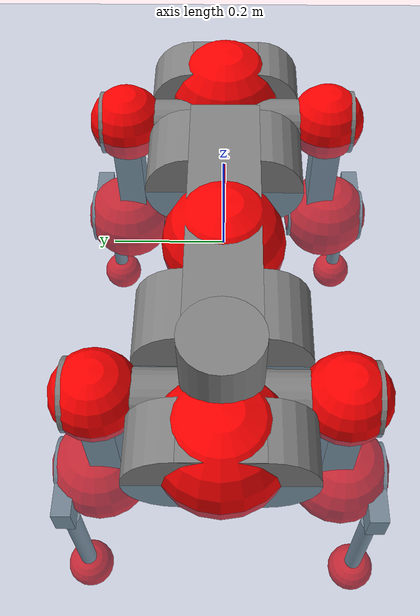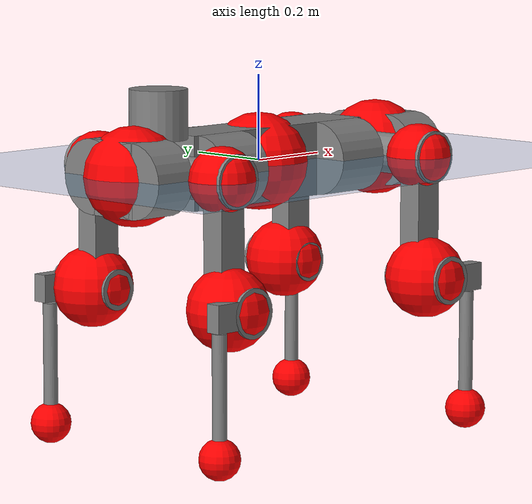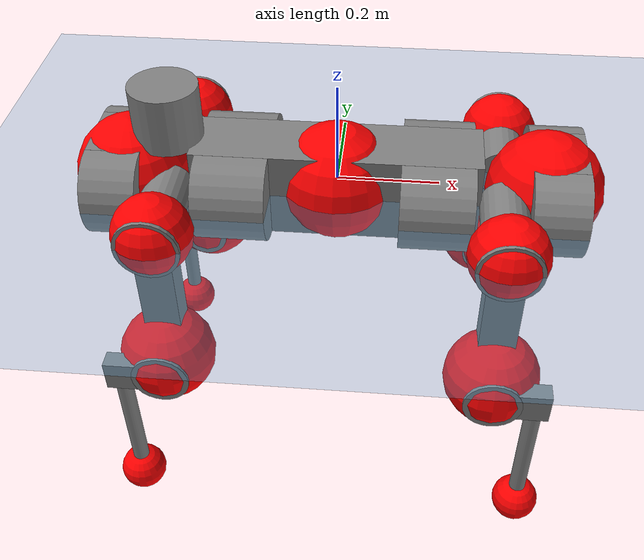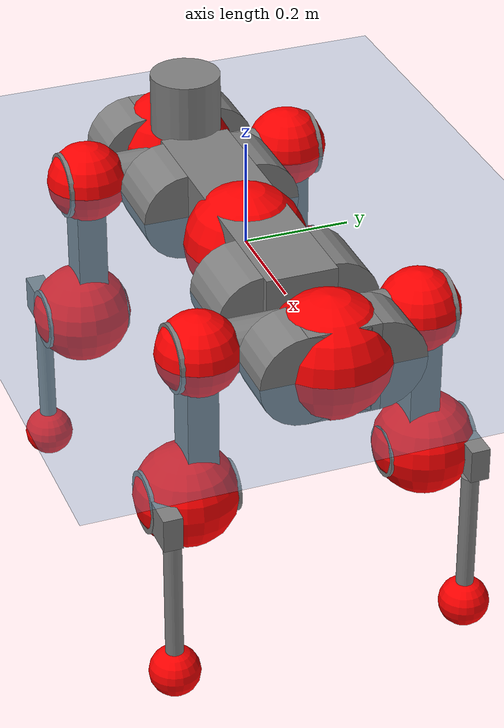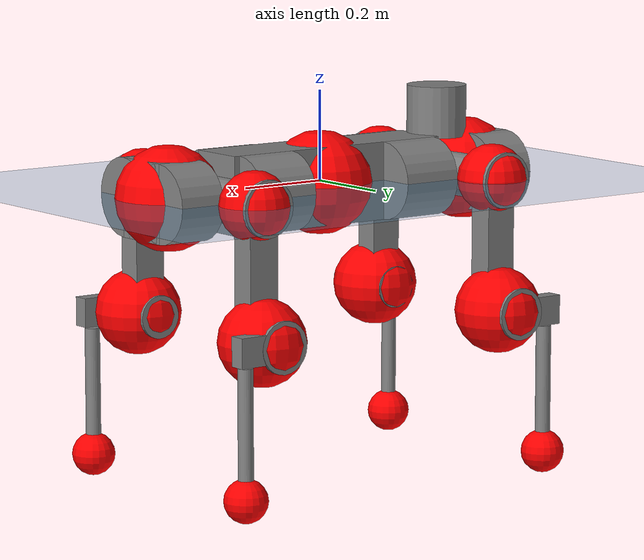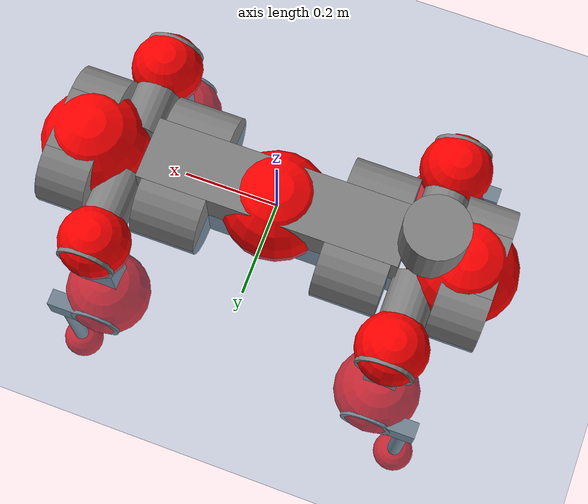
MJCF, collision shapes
<mujoco model="anymal_c">
  <compiler angle="radian" assetdir="assets" balanceinertia="true" inertiafromgeom="false"/>

  <option timestep="0.005" density="1.2" viscosity="2e-05"/>

  <size nkey="1"/>

  <visual>
    <quality shadowsize="8192"/>
    <map shadowclip="0.5"/>
  </visual>

  <default>
    <default class="/">
      <material specular="0" shininess="0.25"/>
      <geom contype="0" conaffinity="0" group="1" solref="-1000 -80"/>
      <site size="0.01 0.005 0.005" group="5"/>
      <general forcelimited="true" forcerange="-80 80" biastype="affine" gainprm="80" biasprm="0 -80 -2"/>
      <default class="anymal_c">
        <joint armature="0.01" damping="0.01" frictionloss="0.1"/>
        <default class="visual">
          <geom type="mesh" group="2"/>
          <default class="visual_zflip"/>
        </default>
        <default class="collision">
          <geom type="cylinder" group="3"/>
          <default class="foot">
            <geom size="0.03 0 0" type="sphere" condim="6" priority="1" friction="0.8 0.02 0.01" solimp="0.015 1 0.03"/>
          </default>
        </default>
      </default>
      <default class="reward_collision_sphere">
        <geom group="5" rgba="1 0 0 1"/>
      </default>
    </default>
  </default>

  <asset>
    <texture type="skybox" colorspace="auto" name="//unnamed_texture_0" builtin="gradient" rgb1="0.95 0.95 0.95" rgb2="0.95 0.95 0.95" width="100" height="600"/>
    <texture type="2d" colorspace="auto" name="texplane" builtin="checker" rgb1="0.345 0.575 0.748" rgb2="0.345 0.575 0.748" markrgb="1 1 1" width="512" height="512"/>
    <texture type="2d" colorspace="linear" name="base" file="base.png"/>
    <texture type="2d" colorspace="linear" name="top_shell" file="top_shell.png"/>
    <texture type="2d" colorspace="linear" name="bottom_shell" file="bottom_shell.png"/>
    <texture type="2d" colorspace="linear" name="remote" file="remote.png"/>
    <texture type="2d" colorspace="linear" name="hatch" file="hatch.png"/>
    <texture type="2d" colorspace="linear" name="handle" file="handle.png"/>
    <texture type="2d" colorspace="linear" name="face" file="face.png"/>
    <texture type="2d" colorspace="linear" name="battery" file="battery.png"/>
    <texture type="2d" colorspace="linear" name="lidar_cage" file="lidar_cage.png"/>
    <texture type="2d" colorspace="linear" name="depth_camera" file="depth_camera.png"/>
    <texture type="2d" colorspace="linear" name="wide_angle_camera" file="wide_angle_camera.png"/>
    <texture type="2d" colorspace="linear" name="lidar" file="lidar.png"/>
    <texture type="2d" colorspace="linear" name="drive" file="drive.png"/>
    <texture type="2d" colorspace="linear" name="hip_l" file="hip_l.png"/>
    <texture type="2d" colorspace="linear" name="shank_l" file="shank_l.png"/>
    <texture type="2d" colorspace="linear" name="foot" file="foot.png"/>
    <texture type="2d" colorspace="linear" name="thigh" file="thigh.png"/>
    <texture type="2d" colorspace="linear" name="shank_r" file="shank_r.png"/>
    <texture type="2d" colorspace="linear" name="hip_r" file="hip_r.png"/>
    <material name="MatPlane" class="/" texture="texplane" texuniform="true" texrepeat="2 2" specular="0.9" shininess="0.5"/>
    <material name="black_plastic" class="/" rgba="0.007 0.007 0.007 1"/>
    <material name="green" class="/" rgba="0.052 0.178 0.033 1"/>
    <material name="red" class="/" rgba="0.178 0.006 0.005 1"/>
    <material name="yellow" class="/" rgba="0.178 0.119 0.006 1"/>
    <material name="lwl" class="/" rgba="0.8 0.8 0.8 1"/>
    <material name="base" class="/" texture="base"/>
    <material name="top_shell" class="/" texture="top_shell"/>
    <material name="bottom_shell" class="/" texture="bottom_shell"/>
    <material name="hip_l" class="/" texture="hip_l"/>
    <material name="thigh" class="/" texture="thigh"/>
    <material name="shank_l" class="/" texture="shank_l"/>
    <material name="foot" class="/" texture="foot"/>
    <material name="hip_r" class="/" texture="hip_r"/>
    <material name="shank" class="/" texture="shank_r"/>
    <material name="hatch" class="/" texture="hatch"/>
    <material name="remote" class="/" texture="remote"/>
    <material name="handle" class="/" texture="handle"/>
    <material name="face" class="/" texture="face"/>
    <material name="depth_camera" class="/" texture="depth_camera"/>
    <material name="wide_angle_camera" class="/" texture="wide_angle_camera"/>
    <material name="battery" class="/" texture="battery"/>
    <material name="lidar_cage" class="/" texture="lidar_cage"/>
    <material name="lidar" class="/" texture="lidar"/>
    <material name="drive" class="/" texture="drive"/>
    <mesh name="base_0" class="/" file="base_0.obj"/>
    <mesh name="base_1" class="/" file="base_1.obj"/>
    <mesh name="base_2" class="/" file="base_2.obj"/>
    <mesh name="base_3" class="/" file="base_3.obj"/>
    <mesh name="base_4" class="/" file="base_4.obj"/>
    <mesh name="base_5" class="/" file="base_5.obj"/>
    <mesh name="top_shell" class="/" file="top_shell.obj"/>
    <mesh name="bottom_shell" class="/" file="bottom_shell.obj"/>
    <mesh name="remote" class="/" file="remote.obj"/>
    <mesh name="handle" class="/" file="handle.obj"/>
    <mesh name="face" class="/" file="face.obj"/>
    <mesh name="wide_angle_camera" class="/" file="wide_angle_camera.obj"/>
    <mesh name="depth_camera" class="/" file="depth_camera.obj"/>
    <mesh name="battery" class="/" file="battery.obj"/>
    <mesh name="lidar_cage" class="/" file="lidar_cage.obj"/>
    <mesh name="lidar" class="/" file="lidar.obj"/>
    <mesh name="drive" class="/" file="drive.obj"/>
    <mesh name="hip_l" class="/" file="hip_l.obj"/>
    <mesh name="thigh" class="/" file="thigh.obj"/>
    <mesh name="shank_l" class="/" file="shank_l.obj"/>
    <mesh name="foot" class="/" file="foot.obj"/>
    <mesh name="hip_r" class="/" file="hip_r.obj"/>
    <mesh name="hatch" class="/" file="hatch.obj"/>
    <mesh name="shank_r" class="/" file="shank_r.obj"/>
  </asset>

  <worldbody>
    <geom name="floor" class="/" size="100 100 0.125" type="plane" group="0" material="MatPlane"/>
    <light name="toplight_shadow" class="/" pos="0 0 5" dir="0.0990148 0.0990148 -0.990148" type="directional" ambient="0.04 0.04 0.04" diffuse="0.55 0.55 0.55" specular="0.12 0.12 0.12"/>
    <light name="toplight_fill" class="/" pos="0 0 5" dir="0.0990148 0.0990148 -0.990148" type="directional" castshadow="false" ambient="0.04 0.04 0.04" diffuse="0.3 0.3 0.3" specular="0.08 0.08 0.08"/>
    <body name="trunk" childclass="anymal_c" pos="0.000150002 6.17512e-06 -0.00271565" quat="1 -7.83292e-08 -3.86381e-05 0.000101918">
      <inertial pos="0.00168706 0.00242759 0.052639" quat="0.49994 0.500227 0.499646 0.500186" mass="16.2537" diaginertia="0.371769 0.50311 0.230361"/>
      <joint name="//unnamed_joint_0" type="free" armature="0" damping="0" frictionloss="0"/>
      <geom name="//unnamed_geom_1" class="visual" material="green" mesh="base_0"/>
      <geom name="//unnamed_geom_2" class="visual" material="yellow" mesh="base_1"/>
      <geom name="//unnamed_geom_3" class="visual" material="red" mesh="base_2"/>
      <geom name="//unnamed_geom_4" class="visual" material="black_plastic" mesh="base_3"/>
      <geom name="//unnamed_geom_5" class="visual" material="lwl" mesh="base_4"/>
      <geom name="//unnamed_geom_6" class="visual" material="base" mesh="base_5"/>
      <geom name="trunk_1" class="collision" size="0.278156 0.0671412 0.0863244" type="box"/>
      <geom name="trunk_2" class="collision" size="0.0863244 0.0695391" pos="0.194828 0.067531 0" quat="0.707107 0 0.707107 0"/>
      <geom name="trunk_3" class="collision" size="0.0863244 0.0695391" pos="-0.194828 0.067531 0" quat="0.707107 0 0.707107 0"/>
      <geom name="trunk_4" class="collision" size="0.0863244 0.0695391" pos="0.194828 -0.067531 0" quat="0.707107 0 0.707107 0"/>
      <geom name="trunk_5" class="collision" size="0.0863244 0.0695391" pos="-0.194828 -0.067531 0" quat="0.707107 0 0.707107 0"/>
      <geom name="//unnamed_geom_12" class="visual" material="top_shell" mesh="top_shell"/>
      <geom name="//unnamed_geom_13" class="visual" material="bottom_shell" mesh="bottom_shell"/>
      <geom name="//unnamed_geom_14" class="visual" material="remote" mesh="remote"/>
      <geom name="//unnamed_geom_15" class="visual" material="handle" mesh="handle"/>
      <geom name="//unnamed_geom_16" class="visual" pos="0.371293 0 0" quat="1 0 0 0" material="face" mesh="face"/>
      <geom name="trunk_6" class="collision" size="0.0527538 0.0671412 0.0863244" pos="0.42056 0 0" type="box"/>
      <geom name="//unnamed_geom_18" class="collision" size="0.0863244 0.0527538" pos="0.42056 0.067531 0" quat="0.707107 0 0.707107 0"/>
      <geom name="//unnamed_geom_19" class="collision" size="0.0863244 0.0527538" pos="0.42056 -0.067531 0" quat="0.707107 0 0.707107 0"/>
      <geom name="//unnamed_geom_20" class="visual" pos="0.413533 0 -0.0306175" quat="0.965926 0 0.258819 0" material="depth_camera" mesh="depth_camera"/>
      <geom name="//unnamed_geom_21" class="visual" pos="0.459525 0 0.0152243" material="wide_angle_camera" mesh="wide_angle_camera"/>
      <geom name="//unnamed_geom_22" class="visual_zflip" pos="-0.371293 0 0" quat="0 0 0 1" material="face" mesh="face"/>
      <geom name="trunk_7" class="collision" size="0.0527538 0.0671412 0.0863244" pos="-0.42056 0 0" quat="0 0 0 1" type="box"/>
      <geom name="//unnamed_geom_24" class="collision" size="0.0863244 0.0527538" pos="-0.42056 -0.067531 0" quat="0 -0.707107 0 0.707107"/>
      <geom name="//unnamed_geom_25" class="collision" size="0.0863244 0.0527538" pos="-0.42056 0.067531 0" quat="0 -0.707107 0 0.707107"/>
      <geom name="//unnamed_geom_26" class="visual" pos="-0.413533 0 -0.0306175" quat="0 -0.258819 0 0.965926" material="depth_camera" mesh="depth_camera"/>
      <geom name="//unnamed_geom_27" class="visual_zflip" pos="-0.459525 0 0.0152243" quat="0 0 0 1" material="wide_angle_camera" mesh="wide_angle_camera"/>
      <geom name="//unnamed_geom_28" class="visual" material="battery" mesh="battery"/>
      <geom name="//unnamed_geom_29" class="visual" pos="0 0.0746732 0.0286222" quat="0.683013 -0.183013 0.183013 0.683013" material="depth_camera" mesh="depth_camera"/>
      <geom name="//unnamed_geom_30" class="visual" pos="0 -0.0746732 0.0286222" quat="0.683013 0.183013 0.183013 -0.683013" material="depth_camera" mesh="depth_camera"/>
      <geom name="//unnamed_geom_31" class="visual" pos="-0.326057 0 0.0747488" quat="1 0 0 0" material="lidar_cage" mesh="lidar_cage"/>
      <geom name="trunk_8" class="collision" size="0.0671412 0.0575496" pos="-0.326057 0 0.135768"/>
      <geom name="//unnamed_geom_33" class="visual" pos="-0.326057 2.70957e-05 0.144616" quat="0.707107 0 0 -0.707107" material="lidar" mesh="lidar"/>
      <geom name="//unnamed_geom_34" class="visual" pos="0.268639 0.10035 -9.01515e-10" quat="0.258819 0.965926 0 0" material="drive" mesh="drive"/>
      <geom name="//unnamed_geom_35" class="visual" pos="0.268639 -0.10035 9.01515e-10" quat="0.258819 -0.965926 0 0" material="drive" mesh="drive"/>
      <geom name="//unnamed_geom_36" class="visual" pos="-0.268639 0.10035 9.01515e-10" quat="0 0 0.965926 -0.258819" material="drive" mesh="drive"/>
      <geom name="//unnamed_geom_37" class="visual" pos="-0.268639 -0.10035 -9.01515e-10" quat="0 0 -0.965926 -0.258819" material="drive" mesh="drive"/>
      <geom name="//unnamed_geom_38" class="visual" pos="0.103908 0 0.0742403" quat="1 0 0 0" material="hatch" mesh="hatch"/>
      <geom name="//unnamed_geom_39" class="reward_collision_sphere" size="0.115099"/>
      <geom name="//unnamed_geom_40" class="reward_collision_sphere" size="0.115099" pos="0.403092 0 0"/>
      <geom name="//unnamed_geom_41" class="reward_collision_sphere" size="0.115099" pos="-0.403092 0 0"/>
      <site name="imu" pos="0.225346 -0.00227999 0.0508786" size="0.0095916"/>
      <camera name="track" pos="0 -1.92946 0" quat="0.707107 0.707107 0 0" mode="trackcom"/>
      <camera name="ego_camera" pos="0.403092 0 -0.0406796" quat="-0.5 -0.5 0.5 0.5"/>
      <body name="LF_HIP" pos="0.268669 0.0988526 -0.00171506" quat="0.25879 0.965934 -6.31225e-05 7.3312e-05">
        <inertial pos="0.0480524 -0.0148338 -0.0101692" quat="-0.132101 0.708728 -0.132172 0.680283" mass="2.46401" diaginertia="0.00337398 0.00401052 0.00367864"/>
        <joint name="LF_HAA" pos="0 0 0" axis="0.999994 -0.00226891 0.00249495" range="-0.743708 0.48307" armature="0.0107911" damping="0.0203157" frictionloss="0.0824525"/>
        <geom name="//unnamed_geom_42" class="visual" pos="0 -5.30321e-05 8.71048e-06" quat="0.258819 -0.965926 0 0" material="hip_l" mesh="hip_l"/>
        <geom name="//unnamed_geom_43" class="visual" pos="0.053656 -0.0659424 -0.0384584" quat="0.183013 -0.683013 0.683013 0.183013" material="drive" mesh="drive"/>
        <geom name="//unnamed_geom_44" class="collision" size="0.047958 0.0671412" pos="0.053656 -0.011538 -0.00702232" quat="-0.353553 -0.612372 0.612372 -0.353553"/>
        <body name="LF_THIGH" pos="0.0539963 -0.0700922 -0.0413662" quat="0.183298 -0.682989 0.68296 0.183013">
          <inertial pos="0.0274869 -0.000229133 -0.25181" quat="0.993172 -0.00507571 -0.0805333 0.0842491" mass="2.6031" diaginertia="0.0173825 0.024987 0.00427897"/>
          <joint name="LF_HFE" pos="0 0 0" axis="0.999982 -0.00257968 -0.00546476" range="-3.19558 3.16364" armature="0.00948225" damping="0.00986187" frictionloss="0.0916108"/>
          <geom name="//unnamed_geom_45" class="visual" pos="-0.0013722 -2.16226e-06 0" quat="0.707107 0 0 -0.707107" material="thigh" mesh="thigh"/>
          <geom name="//unnamed_geom_46" class="collision" size="0.0623454 0.0383664" pos="0.0358304 0 0" quat="0.5 0.5 -0.5 -0.5"/>
          <geom name="//unnamed_geom_47" class="collision" size="0.0359685 0.0287748 0.135543" pos="0.0268728 0 -0.143715" quat="0.707107 0 0 -0.707107" type="box"/>
          <geom name="//unnamed_geom_48" class="visual" pos="0.0898448 0 -0.289842" quat="1 0 0 0" material="drive" mesh="drive"/>
          <geom name="//unnamed_geom_49" class="collision" size="0.047958 0.0671412" pos="0.0271415 0 -0.289842" quat="0.707107 0 0.707107 0"/>
          <geom name="//unnamed_geom_50" class="reward_collision_sphere" size="0.0767328" pos="0.022394 0 0"/>
          <body name="LF_SHANK" pos="0.089298 0.00219195 -0.287514" quat="0.999999 0.000825099 -0.000898176 0.000488937">
            <inertial pos="0.00537708 -0.0591679 -0.0818499" quat="0.993038 -0.115014 -0.00108284 -0.0254341" mass="0.49697" diaginertia="0.00585594 0.00759549 0.0011674"/>
            <joint name="LF_KFE" pos="0 0 0" axis="0.999989 -0.0044287 0.00141788" stiffness="0.000496006" range="-3.1612 3.15884" armature="0.00908373" damping="0.023776" frictionloss="0.0828448"/>
            <geom name="//unnamed_geom_51" class="visual" pos="-0.000447443 -0.00238579 0" quat="0.707107 0 0 -0.707107" material="shank_l" mesh="shank_l"/>
            <geom name="LF_kfe_act" class="collision" size="0.0575496 0.0191832" pos="0.0179152 0 0" quat="0.5 0.5 -0.5 -0.5"/>
            <geom name="//unnamed_geom_53" class="collision" size="0.0551507 0.0323716 0.018224" pos="0.0179152 -0.0554709 0" quat="0.5 0.5 -0.5 -0.5" type="box"/>
            <geom name="//unnamed_geom_54" class="visual" pos="0.0116898 -0.0856167 -0.343712" quat="0.382683 0 0 -0.92388" material="foot" mesh="foot"/>
            <geom name="LF_calf" class="collision" size="0.0167853 0.135483" pos="0.0116897 -0.0848479 -0.171856" quat="0.707107 0 0 -0.707107"/>
            <geom name="LF_foot" class="foot" size="0.031339" pos="0.0116897 -0.0848479 -0.32083" quat="0.707107 0 0 -0.707107"/>
            <geom name="//unnamed_geom_57" class="reward_collision_sphere" size="0.095916" pos="-0.044788 0 0"/>
            <geom name="//unnamed_geom_58" class="reward_collision_sphere" size="0.047958" pos="0.0116897 -0.0848479 -0.32083"/>
            <site name="LF_foot" class="foot" pos="0.0116897 -0.0848479 -0.32083" quat="0.707107 0 0 -0.707107" size="0.0095916"/>
          </body>
        </body>
      </body>
      <body name="RF_HIP" pos="0.269889 -0.103325 0.00032725" quat="0.259539 -0.965732 0.00120606 -0.000318902">
        <inertial pos="0.0506507 0.0140991 -0.00748782" quat="0.136489 0.679256 0.127055 0.709816" mass="2.37358" diaginertia="0.00328846 0.00388798 0.00357445"/>
        <joint name="RF_HAA" pos="0 0 0" axis="1 -7.94336e-06 0.000966885" range="-0.43726 0.669864" armature="0.00937936" damping="0.00894331" frictionloss="0.0839538"/>
        <geom name="//unnamed_geom_59" class="visual" pos="0 5.30317e-05 8.71045e-06" quat="0.258819 0.965926 0 0" material="hip_r" mesh="hip_r"/>
        <geom name="//unnamed_geom_60" class="visual" pos="0.0536561 0.0659424 -0.0384584" quat="0.183013 0.683013 0.683013 -0.183013" material="drive" mesh="drive"/>
        <geom name="//unnamed_geom_61" class="collision" size="0.047958 0.0671412" pos="0.053656 0.011538 -0.00702232" quat="-0.353553 0.612372 0.612372 0.353553"/>
        <body name="RF_THIGH" pos="0.0559468 0.0723534 -0.0433656" quat="0.182795 0.683173 0.682975 -0.182775">
          <inertial pos="0.0280024 0.00102443 -0.249511" quat="0.99276 -0.00501615 -0.08134 0.0882436" mass="2.71716" diaginertia="0.0173133 0.0252041 0.00461514"/>
          <joint name="RF_HFE" pos="0 0 0" axis="0.999948 0.0101947 0.00035842" stiffness="0.00621213" range="-3.10326 3.08759" armature="0.0098023" damping="0" frictionloss="0.0988165"/>
          <geom name="//unnamed_geom_62" class="visual" pos="-0.0013722 -2.16226e-06 0" quat="0.707107 0 0 -0.707107" material="thigh" mesh="thigh"/>
          <geom name="//unnamed_geom_63" class="collision" size="0.0623454 0.0383664" pos="0.0358304 0 0" quat="0.5 0.5 0.5 0.5"/>
          <geom name="//unnamed_geom_64" class="collision" size="0.0359685 0.0287748 0.135543" pos="0.0268728 0 -0.143715" quat="0.707107 0 0 0.707107" type="box"/>
          <geom name="//unnamed_geom_65" class="visual" pos="0.0898448 0 -0.289842" quat="1 0 0 0" material="drive" mesh="drive"/>
          <geom name="//unnamed_geom_66" class="collision" size="0.047958 0.0671412" pos="0.0271415 0 -0.289842" quat="0.707107 0 0.707107 0"/>
          <geom name="//unnamed_geom_67" class="reward_collision_sphere" size="0.0767328" pos="0.022394 0 0"/>
          <body name="RF_SHANK" pos="0.0926273 -0.000543265 -0.288032" quat="1 -0.000458699 -0.000208698 6.066e-06">
            <inertial pos="0.00440206 0.0597481 -0.0797352" quat="0.992937 0.115877 -0.00129723 0.0254428" mass="0.508199" diaginertia="0.00603465 0.00769474 0.00121314"/>
            <joint name="RF_KFE" pos="0 0 0" axis="0.999967 -0.00604476 -0.00551243" range="-3.1333 3.08092" armature="0.00934081" damping="0.00369753" frictionloss="0.0866584"/>
            <geom name="//unnamed_geom_68" class="visual" pos="-0.00044744 0.00238578 0" quat="0.707107 0 0 0.707107" material="shank" mesh="shank_r"/>
            <geom name="RF_kfe_act" class="collision" size="0.0575496 0.0191832" pos="0.0179152 0 0" quat="0.5 0.5 0.5 0.5"/>
            <geom name="//unnamed_geom_70" class="collision" size="0.0551507 0.0323716 0.018224" pos="0.0179152 0.0554709 0" quat="0.5 0.5 0.5 0.5" type="box"/>
            <geom name="//unnamed_geom_71" class="visual" pos="0.0116896 0.0856167 -0.343712" quat="0.382683 0 0 0.92388" material="foot" mesh="foot"/>
            <geom name="RF_calf" class="collision" size="0.0167853 0.135483" pos="0.0116897 0.0848479 -0.171856" quat="0.707107 0 0 0.707107"/>
            <geom name="RF_foot" class="foot" size="0.0277928" pos="0.0116897 0.0848479 -0.32083" quat="0.707107 0 0 0.707107"/>
            <geom name="//unnamed_geom_74" class="reward_collision_sphere" size="0.095916" pos="-0.044788 0 0"/>
            <geom name="//unnamed_geom_75" class="reward_collision_sphere" size="0.047958" pos="0.0116897 0.0848479 -0.32083"/>
            <site name="RF_foot" class="foot" pos="0.0116897 0.0848479 -0.32083" quat="0.707107 0 0 0.707107" size="0.0095916"/>
          </body>
        </body>
      </body>
      <body name="LH_HIP" pos="-0.267164 0.10295 0.00018986" quat="-2.5624e-06 0.000364424 0.965989 -0.258582">
        <inertial pos="0.0491912 0.0117806 -0.00951235" quat="0.138866 0.67334 0.129902 0.714461" mass="2.40184" diaginertia="0.00340197 0.00424862 0.00352367"/>
        <joint name="LH_HAA" pos="0 0 0" axis="0.999924 -0.00703142 -0.0101266" range="-0.507555 0.691254" armature="0.0094387" damping="0" frictionloss="0.104953"/>
        <geom name="//unnamed_geom_76" class="visual" pos="0 5.30317e-05 8.71045e-06" quat="-0.258819 -0.965926 0 0" material="hip_r" mesh="hip_r"/>
        <geom name="//unnamed_geom_77" class="visual" pos="0.0536561 0.0659424 -0.0384584" quat="0.183013 0.683013 0.683013 -0.183013" material="drive" mesh="drive"/>
        <geom name="//unnamed_geom_78" class="collision" size="0.047958 0.0671412" pos="0.053656 0.011538 -0.00702232" quat="-0.353553 0.612372 0.612372 0.353553"/>
        <body name="LH_THIGH" pos="0.0531276 0.0668488 -0.0431799" quat="0.183026 0.683571 0.682742 -0.18192">
          <inertial pos="0.0272821 -0.00279898 -0.24956" quat="0.993191 -0.00708672 -0.0769706 0.0871651" mass="2.69624" diaginertia="0.0182141 0.0250899 0.00479504"/>
          <joint name="LH_HFE" pos="0 0 0" axis="1 -0.000298041 -7.06844e-05" stiffness="0.00276933" range="-3.13899 3.142" armature="0.00950474" damping="0.0121151" frictionloss="0.0957534"/>
          <geom name="//unnamed_geom_79" class="visual" pos="-0.0013722 -2.16226e-06 0" quat="0.707107 0 0 -0.707107" material="thigh" mesh="thigh"/>
          <geom name="//unnamed_geom_80" class="collision" size="0.0623454 0.0383664" pos="0.0358304 0 0" quat="0.5 0.5 -0.5 -0.5"/>
          <geom name="//unnamed_geom_81" class="collision" size="0.0359685 0.0287748 0.135543" pos="0.0268728 0 -0.143715" quat="0.707107 0 0 -0.707107" type="box"/>
          <geom name="//unnamed_geom_82" class="visual" pos="0.0898448 0 -0.289842" quat="1 0 0 0" material="drive" mesh="drive"/>
          <geom name="//unnamed_geom_83" class="collision" size="0.047958 0.0671412" pos="0.0271415 0 -0.289842" quat="0.707107 0 0.707107 0"/>
          <geom name="//unnamed_geom_84" class="reward_collision_sphere" size="0.0767328" pos="0.022394 0 0"/>
          <body name="LH_SHANK" pos="0.0922913 -0.000321303 -0.289817" quat="0.999999 0.000871522 -0.000951211 9.15124e-05">
            <inertial pos="0.00771469 0.0584973 -0.0846465" quat="0.992976 0.115631 -0.00105398 0.0250481" mass="0.512032" diaginertia="0.00597012 0.00813765 0.00126913"/>
            <joint name="LH_KFE" pos="0 0 0" axis="0.999991 0.00373685 0.00204992" range="-3.13752 3.10756" armature="0.009519" damping="0.0221543" frictionloss="0.103924"/>
            <geom name="//unnamed_geom_85" class="visual" pos="-0.00044744 0.00238578 0" quat="-0.707107 0 0 -0.707107" material="shank" mesh="shank_r"/>
            <geom name="LH_kfe_act" class="collision" size="0.0575496 0.0191832" pos="0.0179152 0 0" quat="0.5 0.5 -0.5 -0.5"/>
            <geom name="//unnamed_geom_87" class="collision" size="0.0551507 0.0323716 0.018224" pos="0.0179152 0.0554709 0" quat="0.5 0.5 -0.5 -0.5" type="box"/>
            <geom name="//unnamed_geom_88" class="visual" pos="0.0116896 0.0856167 -0.343712" quat="-0.382683 0 0 -0.92388" material="foot" mesh="foot"/>
            <geom name="LH_calf" class="collision" size="0.0167853 0.135483" pos="0.0116897 0.0848479 -0.171856" quat="0.707107 0 0 -0.707107"/>
            <geom name="LH_foot" class="foot" size="0.0271802" pos="0.0116897 0.0848479 -0.32083" quat="0.707107 0 0 -0.707107"/>
            <geom name="//unnamed_geom_91" class="reward_collision_sphere" size="0.095916" pos="-0.044788 0 0"/>
            <geom name="//unnamed_geom_92" class="reward_collision_sphere" size="0.047958" pos="0.0116897 0.0848479 -0.32083"/>
            <site name="LH_foot" class="foot" pos="0.0116897 0.0848479 -0.32083" quat="0.707107 0 0 -0.707107" size="0.0095916"/>
          </body>
        </body>
      </body>
      <body name="RH_HIP" pos="-0.2691 -0.0973019 -0.00138925" quat="-0.00121942 0.000989506 -0.965856 -0.259073">
        <inertial pos="0.0500521 -0.013184 -0.0101057" quat="-0.128724 0.715251 -0.128612 0.674763" mass="2.38234" diaginertia="0.00336903 0.0038927 0.00347022"/>
        <joint name="RH_HAA" pos="0 0 0" axis="0.999989 -0.00404794 -0.00256463" range="-0.778479 0.485484" armature="0.00816248" damping="0.0132524" frictionloss="0.107642"/>
        <geom name="//unnamed_geom_93" class="visual" pos="0 -5.30321e-05 8.71048e-06" quat="-0.258819 0.965926 0 0" material="hip_l" mesh="hip_l"/>
        <geom name="//unnamed_geom_94" class="visual" pos="0.053656 -0.0659424 -0.0384584" quat="-0.183013 0.683013 -0.683013 -0.183013" material="drive" mesh="drive"/>
        <geom name="//unnamed_geom_95" class="collision" size="0.047958 0.0671412" pos="0.053656 -0.011538 -0.00702232" quat="0.353553 0.612372 -0.612372 0.353553"/>
        <body name="RH_THIGH" pos="0.0545549 -0.0691239 -0.0444684" quat="-0.182988 0.683029 -0.682952 -0.1832">
          <inertial pos="0.0277539 0.00183466 -0.24746" quat="0.992767 -0.0162841 -0.0760403 0.0914726" mass="2.65365" diaginertia="0.0171059 0.0242706 0.00449451"/>
          <joint name="RH_HFE" pos="0 0 0" axis="0.999927 0.0061059 0.0103934" stiffness="0.0105053" range="-3.11747 3.09095" armature="0.0106138" damping="0.00871281" frictionloss="0.0967508"/>
          <geom name="//unnamed_geom_96" class="visual" pos="-0.0013722 -2.16226e-06 0" quat="0.707107 0 0 -0.707107" material="thigh" mesh="thigh"/>
          <geom name="//unnamed_geom_97" class="collision" size="0.0623454 0.0383664" pos="0.0358304 0 0" quat="0.5 0.5 0.5 0.5"/>
          <geom name="//unnamed_geom_98" class="collision" size="0.0359685 0.0287748 0.135543" pos="0.0268728 0 -0.143715" quat="0.707107 0 0 0.707107" type="box"/>
          <geom name="//unnamed_geom_99" class="visual" pos="0.0898448 0 -0.289842" quat="1 0 0 0" material="drive" mesh="drive"/>
          <geom name="//unnamed_geom_100" class="collision" size="0.047958 0.0671412" pos="0.0271415 0 -0.289842" quat="0.707107 0 0.707107 0"/>
          <geom name="//unnamed_geom_101" class="reward_collision_sphere" size="0.0767328" pos="0.022394 0 0"/>
          <body name="RH_SHANK" pos="0.0872955 -0.002451 -0.289507" quat="0.999999 0.000410618 0.000663405 -0.00124984">
            <inertial pos="0.006786 -0.0594846 -0.0818784" quat="0.993783 -0.108279 0.00760019 -0.024774" mass="0.490894" diaginertia="0.00566461 0.0075384 0.00121746"/>
            <joint name="RH_KFE" pos="0 0 0" axis="0.999962 0.00237527 0.00833908" stiffness="0.00912059" range="-3.073 3.19011" armature="0.00965777" damping="0.00789737" frictionloss="0.0908006"/>
            <geom name="//unnamed_geom_102" class="visual" pos="-0.000447443 -0.00238579 0" quat="0.707107 0 0 -0.707107" material="shank_l" mesh="shank_l"/>
            <geom name="RH_kfe_act" class="collision" size="0.0575496 0.0191832" pos="0.0179152 0 0" quat="0.5 0.5 0.5 0.5"/>
            <geom name="//unnamed_geom_104" class="collision" size="0.0551507 0.0323716 0.018224" pos="0.0179152 -0.0554709 0" quat="0.5 0.5 0.5 0.5" type="box"/>
            <geom name="//unnamed_geom_105" class="visual" pos="0.0116898 -0.0856167 -0.343712" quat="0.382683 0 0 -0.92388" material="foot" mesh="foot"/>
            <geom name="RH_calf" class="collision" size="0.0167853 0.135483" pos="0.0116897 -0.0848479 -0.171856" quat="0.707107 0 0 0.707107"/>
            <geom name="RH_foot" class="foot" size="0.0263712" pos="0.0116897 -0.0848479 -0.32083" quat="0.707107 0 0 0.707107"/>
            <geom name="//unnamed_geom_108" class="reward_collision_sphere" size="0.095916" pos="-0.044788 0 0"/>
            <geom name="//unnamed_geom_109" class="reward_collision_sphere" size="0.047958" pos="0.0116897 -0.0848479 -0.32083"/>
            <site name="RH_foot" class="foot" pos="0.0116897 -0.0848479 -0.32083" quat="0.707107 0 0 0.707107" size="0.0095916"/>
          </body>
        </body>
      </body>
    </body>
  </worldbody>

  <contact>
    <pair class="/" geom1="floor" geom2="LF_foot" name="//unnamed_contact_0"/>
    <pair class="/" geom1="floor" geom2="RF_foot" name="//unnamed_contact_1"/>
    <pair class="/" geom1="floor" geom2="LH_foot" name="//unnamed_contact_2"/>
    <pair class="/" geom1="floor" geom2="RH_foot" name="//unnamed_contact_3"/>
  </contact>

  <actuator>
    <general name="LF_HAA" class="/" joint="LF_HAA" forcerange="-71.8054 71.8054" gainprm="82.4249" biasprm="0 -82.4249 -2.01606"/>
    <general name="LF_HFE" class="/" joint="LF_HFE" forcerange="-71.0875 71.0875" gainprm="82.4249" biasprm="0 -82.4249 -2.01606"/>
    <general name="LF_KFE" class="/" joint="LF_KFE" forcerange="-75.8966 75.8966" gainprm="82.4249" biasprm="0 -82.4249 -2.01606"/>
    <general name="RF_HAA" class="/" joint="RF_HAA" forcerange="-78.0228 78.0228" gainprm="82.4249" biasprm="0 -82.4249 -2.01606"/>
    <general name="RF_HFE" class="/" joint="RF_HFE" forcerange="-81.2971 81.2971" gainprm="82.4249" biasprm="0 -82.4249 -2.01606"/>
    <general name="RF_KFE" class="/" joint="RF_KFE" forcerange="-72.8395 72.8395" gainprm="82.4249" biasprm="0 -82.4249 -2.01606"/>
    <general name="LH_HAA" class="/" joint="LH_HAA" forcerange="-84.6882 84.6882" gainprm="82.4249" biasprm="0 -82.4249 -2.01606"/>
    <general name="LH_HFE" class="/" joint="LH_HFE" forcerange="-76.7469 76.7469" gainprm="82.4249" biasprm="0 -82.4249 -2.01606"/>
    <general name="LH_KFE" class="/" joint="LH_KFE" forcerange="-72.6642 72.6642" gainprm="82.4249" biasprm="0 -82.4249 -2.01606"/>
    <general name="RH_HAA" class="/" joint="RH_HAA" forcerange="-70.9583 70.9583" gainprm="82.4249" biasprm="0 -82.4249 -2.01606"/>
    <general name="RH_HFE" class="/" joint="RH_HFE" forcerange="-79.9536 79.9536" gainprm="82.4249" biasprm="0 -82.4249 -2.01606"/>
    <general name="RH_KFE" class="/" joint="RH_KFE" forcerange="-79.028 79.028" gainprm="82.4249" biasprm="0 -82.4249 -2.01606"/>
  </actuator>

  <sensor>
    <gyro site="imu" name="imu_angular_velocity"/>
    <velocimeter site="imu" name="imu_linear_velocity"/>
    <framelinvel objtype="site" objname="LF_foot" name="LF_foot_global_linear_velocity"/>
    <framelinvel objtype="site" objname="RF_foot" name="RF_foot_global_linear_velocity"/>
    <framelinvel objtype="site" objname="LH_foot" name="LH_foot_global_linear_velocity"/>
    <framelinvel objtype="site" objname="RH_foot" name="RH_foot_global_linear_velocity"/>
  </sensor>

  <keyframe>
    <key name="home" qpos="0 0 0.55 1 0 0 0 0 0.4 -0.8 0 -0.4 0.8 0 -0.4 0.8 0 0.4 -0.8"/>
  </keyframe>
</mujoco>
